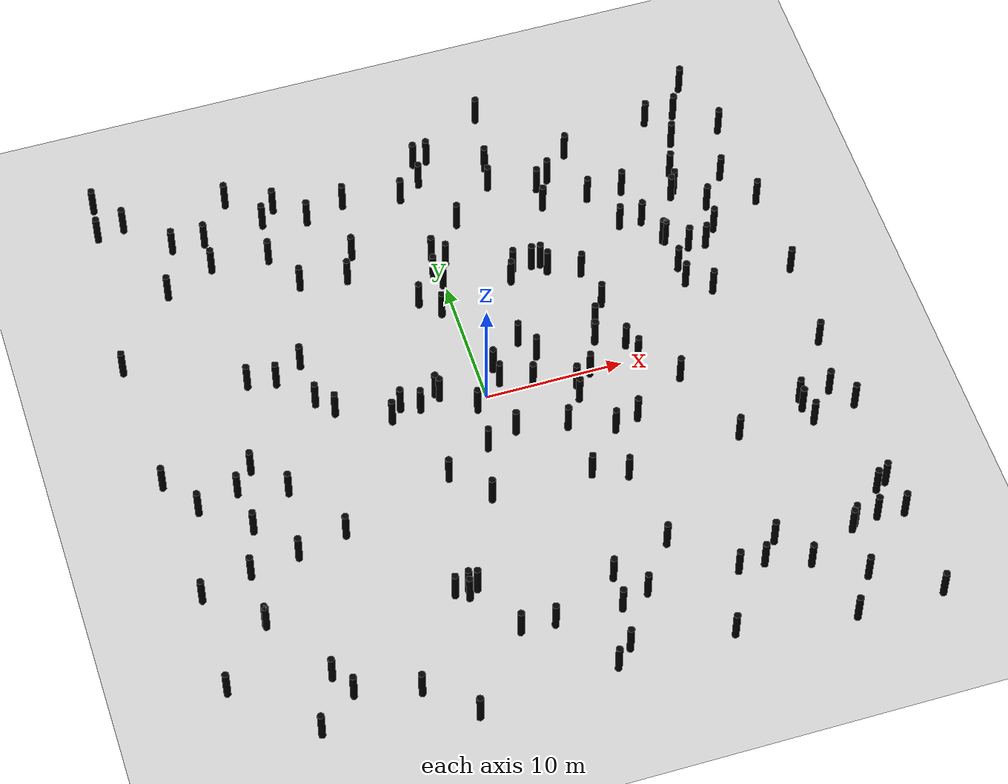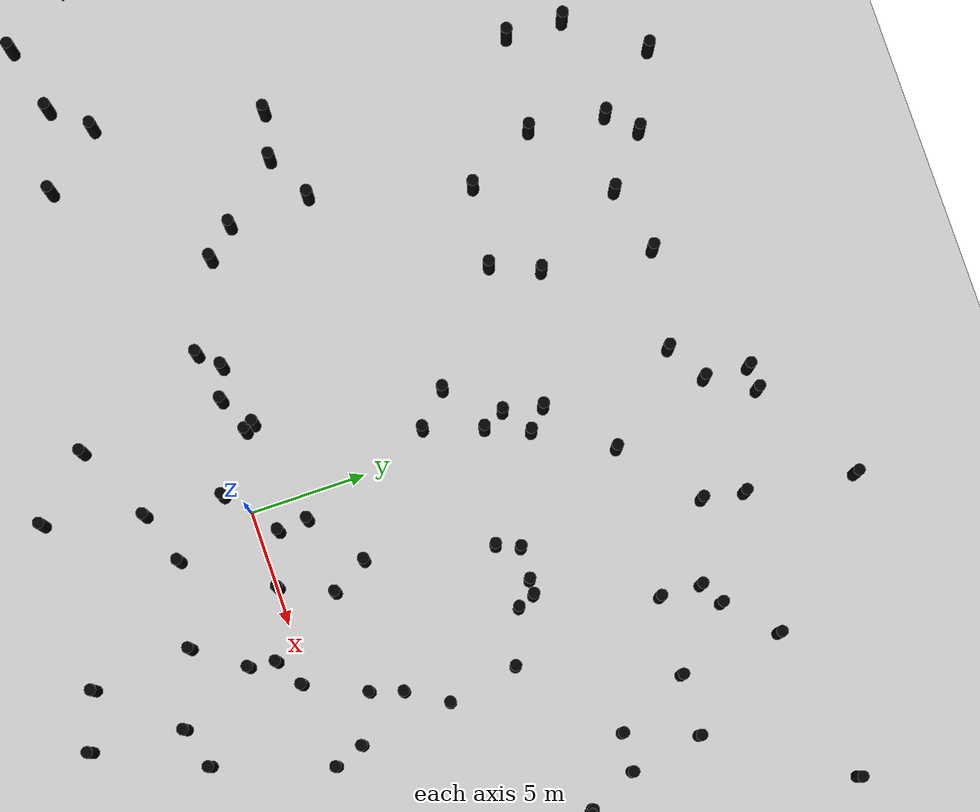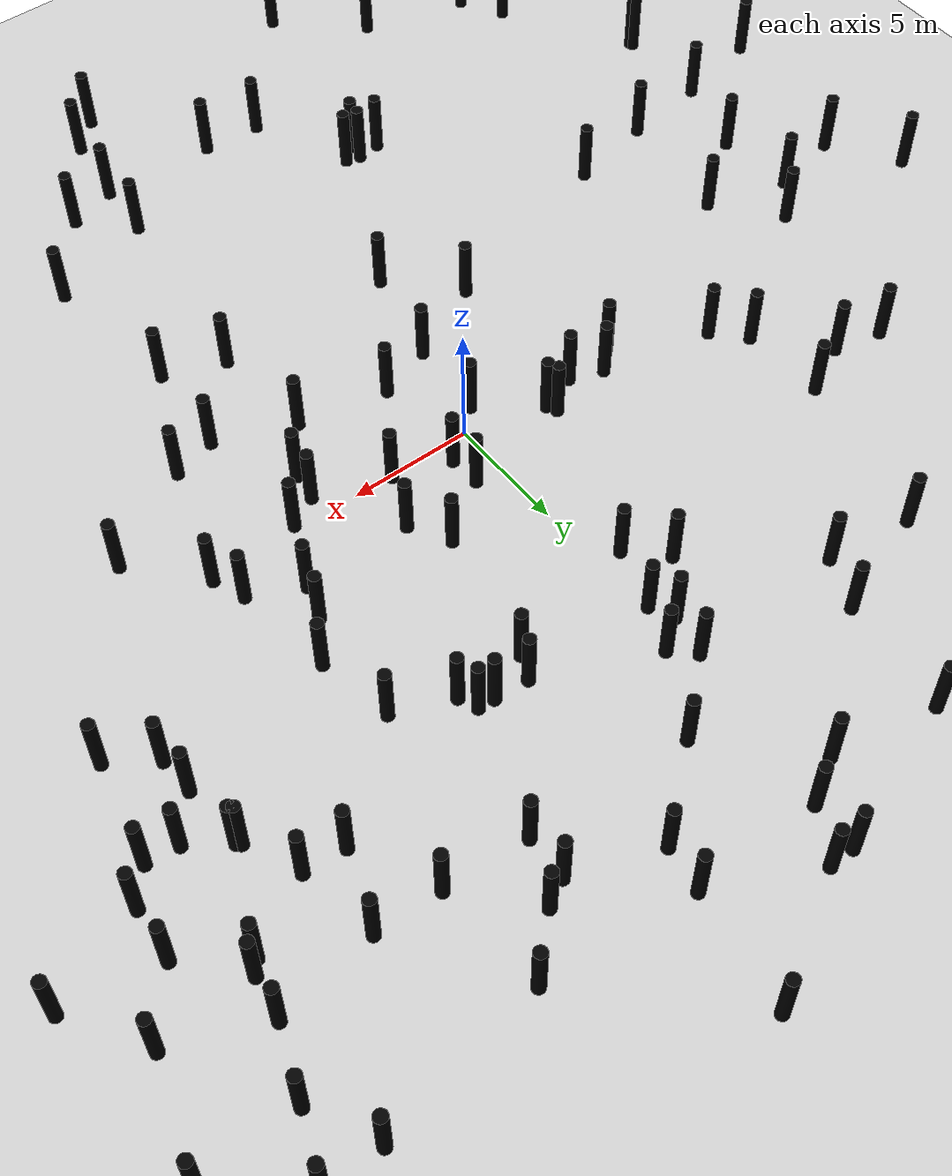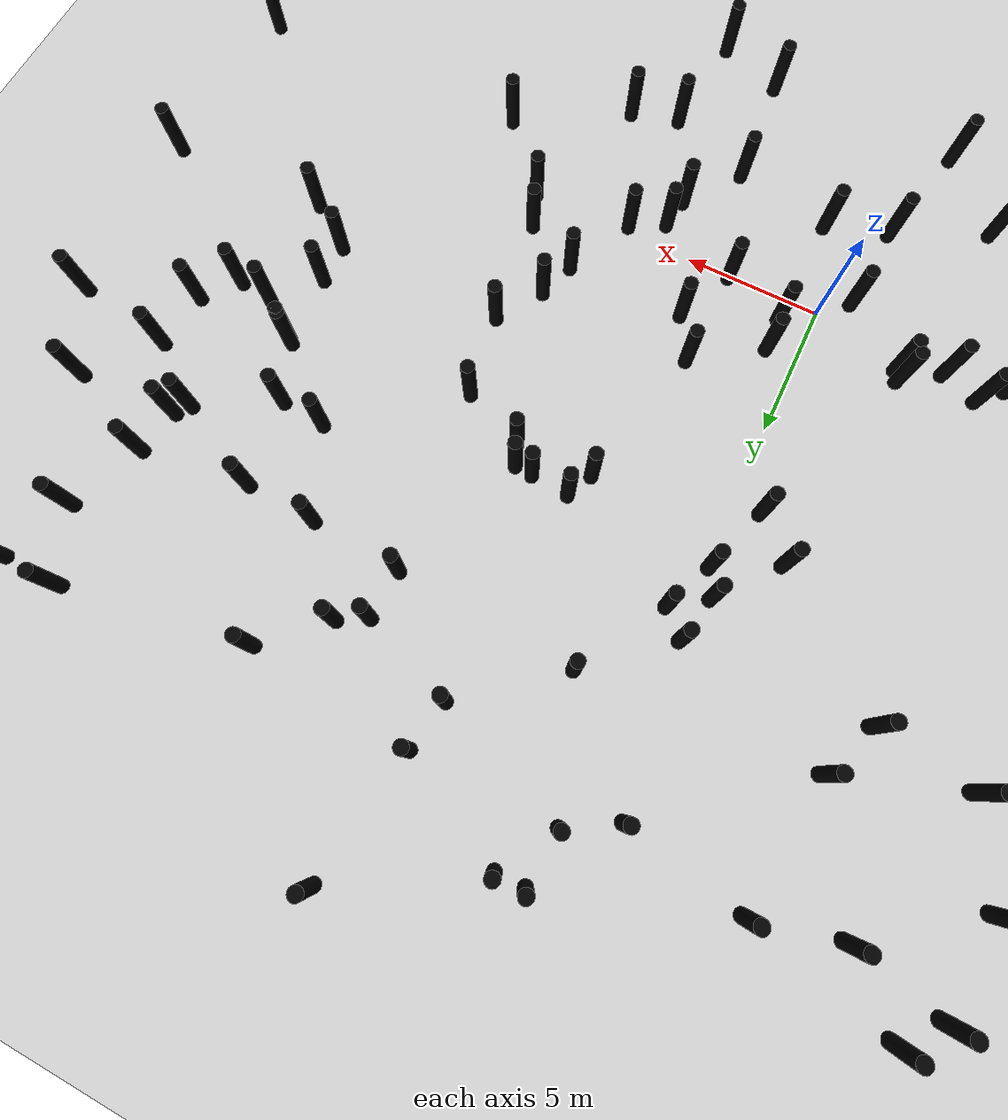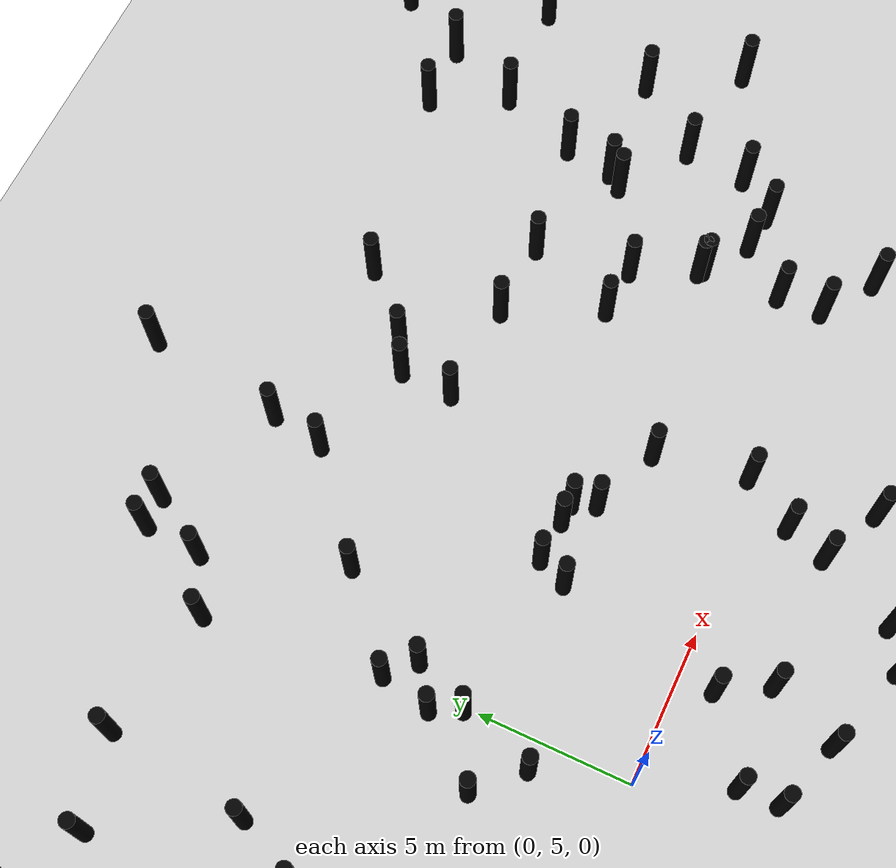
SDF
<?xml version="1.0"?>

<sdf version="1.6">
    <world name="low">
        <physics name="4ms" type="ignored">
            <max_step_size>0.004</max_step_size>
            <real_time_factor>2.0</real_time_factor>
        </physics>
        <plugin
            filename="ignition-gazebo-physics-system"
            name="ignition::gazebo::systems::Physics">
        </plugin>
        <plugin
            filename="ignition-gazebo-scene-broadcaster-system"
            name="ignition::gazebo::systems::SceneBroadcaster">
        </plugin>
        <plugin
            filename="ignition-gazebo-user-commands-system"
            name="ignition::gazebo::systems::UserCommands">
        </plugin>
        <plugin
            filename="ignition-gazebo-sensors-system"
            name="ignition::gazebo::systems::Sensors">
            <render_engine>ogre2</render_engine>
        </plugin>

        <include>
            <uri>model://ground_plane</uri>
        </include>
        <include>
            <uri>model://pole</uri>
            <name>pole1</name>
            <pose>-19.44 15.28 0 0 0 0</pose>
        </include>
        <include>
            <uri>model://pole</uri>
            <name>pole2</name>
            <pose>20.89 20.53 0 0 0 0</pose>
        </include>
        <include>
            <uri>model://pole</uri>
            <name>pole3</name>
            <pose>20.29 9.5 0 0 0 0</pose>
        </include>
        <include>
            <uri>model://pole</uri>
            <name>pole4</name>
            <pose>15.94 -8.54 0 0 0 0</pose>
        </include>
        <include>
            <uri>model://pole</uri>
            <name>pole5</name>
            <pose>20.48 11.62 0 0 0 0</pose>
        </include>
        <include>
            <uri>model://pole</uri>
            <name>pole6</name>
            <pose>-13.36 22.28 0 0 0 0</pose>
        </include>
        <include>
            <uri>model://pole</uri>
            <name>pole7</name>
            <pose>-6.07 -15.72 0 0 0 0</pose>
        </include>
        <include>
            <uri>model://pole</uri>
            <name>pole8</name>
            <pose>-22.75 24.59 0 0 0 0</pose>
        </include>
        <include>
            <uri>model://pole</uri>
            <name>pole9</name>
            <pose>24.65 -8.37 0 0 0 0</pose>
        </include>
        <include>
            <uri>model://pole</uri>
            <name>pole10</name>
            <pose>-23.79 -18.1 0 0 0 0</pose>
        </include>
        <include>
            <uri>model://pole</uri>
            <name>pole11</name>
            <pose>21.07 -6.77 0 0 0 0</pose>
        </include>
        <include>
            <uri>model://pole</uri>
            <name>pole12</name>
            <pose>20.53 -22.12 0 0 0 0</pose>
        </include>
        <include>
            <uri>model://pole</uri>
            <name>pole13</name>
            <pose>-21.06 22.23 0 0 0 0</pose>
        </include>
        <include>
            <uri>model://pole</uri>
            <name>pole14</name>
            <pose>19.26 8.27 0 0 0 0</pose>
        </include>
        <include>
            <uri>model://pole</uri>
            <name>pole15</name>
            <pose>23.69 18.23 0 0 0 0</pose>
        </include>
        <include>
            <uri>model://pole</uri>
            <name>pole16</name>
            <pose>-13.99 5.48 0 0 0 0</pose>
        </include>
        <include>
            <uri>model://pole</uri>
            <name>pole17</name>
            <pose>12.31 14.91 0 0 0 0</pose>
        </include>
        <include>
            <uri>model://pole</uri>
            <name>pole18</name>
            <pose>11.96 19.35 0 0 0 0</pose>
        </include>
        <include>
            <uri>model://pole</uri>
            <name>pole19</name>
            <pose>-15.72 19.19 0 0 0 0</pose>
        </include>
        <include>
            <uri>model://pole</uri>
            <name>pole20</name>
            <pose>8.94 15.12 0 0 0 0</pose>
        </include>
        <include>
            <uri>model://pole</uri>
            <name>pole21</name>
            <pose>7.46 -9.46 0 0 0 0</pose>
        </include>
        <include>
            <uri>model://pole</uri>
            <name>pole22</name>
            <pose>-0.59 11.38 0 0 0 0</pose>
        </include>
        <include>
            <uri>model://pole</uri>
            <name>pole23</name>
            <pose>22.82 -17.74 0 0 0 0</pose>
        </include>
        <include>
            <uri>model://pole</uri>
            <name>pole24</name>
            <pose>-7.01 -0.05 0 0 0 0</pose>
        </include>
        <include>
            <uri>model://pole</uri>
            <name>pole25</name>
            <pose>-12.74 -8.33 0 0 0 0</pose>
        </include>
        <include>
            <uri>model://pole</uri>
            <name>pole26</name>
            <pose>9.25 3.72 0 0 0 0</pose>
        </include>
        <include>
            <uri>model://pole</uri>
            <name>pole27</name>
            <pose>9.61 -4.92 0 0 0 0</pose>
        </include>
        <include>
            <uri>model://pole</uri>
            <name>pole28</name>
            <pose>21.12 -17.88 0 0 0 0</pose>
        </include>
        <include>
            <uri>model://pole</uri>
            <name>pole29</name>
            <pose>10.3 5.4 0 0 0 0</pose>
        </include>
        <include>
            <uri>model://pole</uri>
            <name>pole30</name>
            <pose>6.36 -0.93 0 0 0 0</pose>
        </include>
        <include>
            <uri>model://pole</uri>
            <name>pole31</name>
            <pose>-6.65 12.83 0 0 0 0</pose>
        </include>
        <include>
            <uri>model://pole</uri>
            <name>pole32</name>
            <pose>3.12 -22.77 0 0 0 0</pose>
        </include>
        <include>
            <uri>model://pole</uri>
            <name>pole33</name>
            <pose>-0.96 -0.88 0 0 0 0</pose>
        </include>
        <include>
            <uri>model://pole</uri>
            <name>pole34</name>
            <pose>3.62 -19.62 0 0 0 0</pose>
        </include>
        <include>
            <uri>model://pole</uri>
            <name>pole35</name>
            <pose>4.4 2.31 0 0 0 0</pose>
        </include>
        <include>
            <uri>model://pole</uri>
            <name>pole36</name>
            <pose>-8.13 -24.86 0 0 0 0</pose>
        </include>
        <include>
            <uri>model://pole</uri>
            <name>pole37</name>
            <pose>22.35 13.93 0 0 0 0</pose>
        </include>
        <include>
            <uri>model://pole</uri>
            <name>pole38</name>
            <pose>9.01 16.9 0 0 0 0</pose>
        </include>
        <include>
            <uri>model://pole</uri>
            <name>pole39</name>
            <pose>1.06 -3.48 0 0 0 0</pose>
        </include>
        <include>
            <uri>model://pole</uri>
            <name>pole40</name>
            <pose>0.61 12.25 0 0 0 0</pose>
        </include>
        <include>
            <uri>model://pole</uri>
            <name>pole41</name>
            <pose>19.9 18.04 0 0 0 0</pose>
        </include>
        <include>
            <uri>model://pole</uri>
            <name>pole42</name>
            <pose>18.26 13.23 0 0 0 0</pose>
        </include>
        <include>
            <uri>model://pole</uri>
            <name>pole43</name>
            <pose>5.63 -18.98 0 0 0 0</pose>
        </include>
        <include>
            <uri>model://pole</uri>
            <name>pole44</name>
            <pose>7.47 9.37 0 0 0 0</pose>
        </include>
        <include>
            <uri>model://pole</uri>
            <name>pole45</name>
            <pose>3.79 -17.09 0 0 0 0</pose>
        </include>
        <include>
            <uri>model://pole</uri>
            <name>pole46</name>
            <pose>-10.69 1.77 0 0 0 0</pose>
        </include>
        <include>
            <uri>model://pole</uri>
            <name>pole47</name>
            <pose>-19.87 -9.62 0 0 0 0</pose>
        </include>
        <include>
            <uri>model://pole</uri>
            <name>pole48</name>
            <pose>-10.1 13.28 0 0 0 0</pose>
        </include>
        <include>
            <uri>model://pole</uri>
            <name>pole49</name>
            <pose>15.32 -17.54 0 0 0 0</pose>
        </include>
        <include>
            <uri>model://pole</uri>
            <name>pole50</name>
            <pose>-18.11 19.28 0 0 0 0</pose>
        </include>
        <include>
            <uri>model://pole</uri>
            <name>pole51</name>
            <pose>-2.29 9.28 0 0 0 0</pose>
        </include>
        <include>
            <uri>model://pole</uri>
            <name>pole52</name>
            <pose>21.0 -7.6 0 0 0 0</pose>
        </include>
        <include>
            <uri>model://pole</uri>
            <name>pole53</name>
            <pose>16.39 9.57 0 0 0 0</pose>
        </include>
        <include>
            <uri>model://pole</uri>
            <name>pole54</name>
            <pose>10.29 -23.83 0 0 0 0</pose>
        </include>
        <include>
            <uri>model://pole</uri>
            <name>pole55</name>
            <pose>0.8 19.89 0 0 0 0</pose>
        </include>
        <include>
            <uri>model://pole</uri>
            <name>pole56</name>
            <pose>24.43 4.34 0 0 0 0</pose>
        </include>
        <include>
            <uri>model://pole</uri>
            <name>pole57</name>
            <pose>1.19 0.86 0 0 0 0</pose>
        </include>
        <include>
            <uri>model://pole</uri>
            <name>pole58</name>
            <pose>-2.22 -8.45 0 0 0 0</pose>
        </include>
        <include>
            <uri>model://pole</uri>
            <name>pole59</name>
            <pose>18.67 20.52 0 0 0 0</pose>
        </include>
        <include>
            <uri>model://pole</uri>
            <name>pole60</name>
            <pose>-19.02 -2.79 0 0 0 0</pose>
        </include>
        <include>
            <uri>model://pole</uri>
            <name>pole61</name>
            <pose>-18.57 -23.03 0 0 0 0</pose>
        </include>
        <include>
            <uri>model://pole</uri>
            <name>pole62</name>
            <pose>-23.55 -10.51 0 0 0 0</pose>
        </include>
        <include>
            <uri>model://pole</uri>
            <name>pole63</name>
            <pose>-1.13 -19.49 0 0 0 0</pose>
        </include>
        <include>
            <uri>model://pole</uri>
            <name>pole64</name>
            <pose>6.2 -2.1 0 0 0 0</pose>
        </include>
        <include>
            <uri>model://pole</uri>
            <name>pole65</name>
            <pose>24.76 -18.0 0 0 0 0</pose>
        </include>
        <include>
            <uri>model://pole</uri>
            <name>pole66</name>
            <pose>13.8 11.78 0 0 0 0</pose>
        </include>
        <include>
            <uri>model://pole</uri>
            <name>pole67</name>
            <pose>13.6 -2.53 0 0 0 0</pose>
        </include>
        <include>
            <uri>model://pole</uri>
            <name>pole68</name>
            <pose>9.75 8.45 0 0 0 0</pose>
        </include>
        <include>
            <uri>model://pole</uri>
            <name>pole69</name>
            <pose>10.0 17.46 0 0 0 0</pose>
        </include>
        <include>
            <uri>model://pole</uri>
            <name>pole70</name>
            <pose>6.51 10.17 0 0 0 0</pose>
        </include>
        <include>
            <uri>model://pole</uri>
            <name>pole71</name>
            <pose>10.81 1.35 0 0 0 0</pose>
        </include>
        <include>
            <uri>model://pole</uri>
            <name>pole72</name>
            <pose>-0.96 7.95 0 0 0 0</pose>
        </include>
        <include>
            <uri>model://pole</uri>
            <name>pole73</name>
            <pose>-15.73 -20.79 0 0 0 0</pose>
        </include>
        <include>
            <uri>model://pole</uri>
            <name>pole74</name>
            <pose>7.16 10.12 0 0 0 0</pose>
        </include>
        <include>
            <uri>model://pole</uri>
            <name>pole75</name>
            <pose>24.16 11.03 0 0 0 0</pose>
        </include>
        <include>
            <uri>model://pole</uri>
            <name>pole76</name>
            <pose>-1.22 -4.25 0 0 0 0</pose>
        </include>
        <include>
            <uri>model://pole</uri>
            <name>pole77</name>
            <pose>7.82 -5.43 0 0 0 0</pose>
        </include>
        <include>
            <uri>model://pole</uri>
            <name>pole78</name>
            <pose>-11.65 16.3 0 0 0 0</pose>
        </include>
        <include>
            <uri>model://pole</uri>
            <name>pole79</name>
            <pose>3.51 3.87 0 0 0 0</pose>
        </include>
        <include>
            <uri>model://pole</uri>
            <name>pole80</name>
            <pose>24.97 -24.88 0 0 0 0</pose>
        </include>
        <include>
            <uri>model://pole</uri>
            <name>pole81</name>
            <pose>1.12 2.17 0 0 0 0</pose>
        </include>
        <include>
            <uri>model://pole</uri>
            <name>pole82</name>
            <pose>-15.82 16.72 0 0 0 0</pose>
        </include>
        <include>
            <uri>model://pole</uri>
            <name>pole83</name>
            <pose>-6.95 -15.2 0 0 0 0</pose>
        </include>
        <include>
            <uri>model://pole</uri>
            <name>pole84</name>
            <pose>15.45 11.65 0 0 0 0</pose>
        </include>
        <include>
            <uri>model://pole</uri>
            <name>pole85</name>
            <pose>18.89 15.38 0 0 0 0</pose>
        </include>
        <include>
            <uri>model://pole</uri>
            <name>pole86</name>
            <pose>8.8 2.34 0 0 0 0</pose>
        </include>
        <include>
            <uri>model://pole</uri>
            <name>pole87</name>
            <pose>-17.66 -1.24 0 0 0 0</pose>
        </include>
        <include>
            <uri>model://pole</uri>
            <name>pole88</name>
            <pose>-11.22 19.6 0 0 0 0</pose>
        </include>
        <include>
            <uri>model://pole</uri>
            <name>pole89</name>
            <pose>16.71 5.36 0 0 0 0</pose>
        </include>
        <include>
            <uri>model://pole</uri>
            <name>pole90</name>
            <pose>8.18 -15.54 0 0 0 0</pose>
        </include>
        <include>
            <uri>model://pole</uri>
            <name>pole91</name>
            <pose>-18.75 -6.11 0 0 0 0</pose>
        </include>
        <include>
            <uri>model://pole</uri>
            <name>pole92</name>
            <pose>-23.86 -0.69 0 0 0 0</pose>
        </include>
        <include>
            <uri>model://pole</uri>
            <name>pole93</name>
            <pose>-16.33 -9.11 0 0 0 0</pose>
        </include>
        <include>
            <uri>model://pole</uri>
            <name>pole94</name>
            <pose>3.44 0.09 0 0 0 0</pose>
        </include>
        <include>
            <uri>model://pole</uri>
            <name>pole95</name>
            <pose>6.65 24.6 0 0 0 0</pose>
        </include>
        <include>
            <uri>model://pole</uri>
            <name>pole96</name>
            <pose>-6.17 0.79 0 0 0 0</pose>
        </include>
        <include>
            <uri>model://pole</uri>
            <name>pole97</name>
            <pose>-5.11 19.63 0 0 0 0</pose>
        </include>
        <include>
            <uri>model://pole</uri>
            <name>pole98</name>
            <pose>-0.23 13.07 0 0 0 0</pose>
        </include>
        <include>
            <uri>model://pole</uri>
            <name>pole99</name>
            <pose>4.69 -4.19 0 0 0 0</pose>
        </include>
        <include>
            <uri>model://pole</uri>
            <name>pole100</name>
            <pose>0.95 21.82 0 0 0 0</pose>
        </include>
        <include>
            <uri>model://pole</uri>
            <name>pole101</name>
            <pose>1.89 -23.98 0 0 0 0</pose>
        </include>
        <include>
            <uri>model://pole</uri>
            <name>pole102</name>
            <pose>5.11 10.26 0 0 0 0</pose>
        </include>
        <include>
            <uri>model://pole</uri>
            <name>pole103</name>
            <pose>22.2 22.94 0 0 0 0</pose>
        </include>
        <include>
            <uri>model://pole</uri>
            <name>pole104</name>
            <pose>-19.94 -13.67 0 0 0 0</pose>
        </include>
        <include>
            <uri>model://pole</uri>
            <name>pole105</name>
            <pose>18.69 -24.99 0 0 0 0</pose>
        </include>
        <include>
            <uri>model://pole</uri>
            <name>pole106</name>
            <pose>23.34 -6.7 0 0 0 0</pose>
        </include>
        <include>
            <uri>model://pole</uri>
            <name>pole107</name>
            <pose>-16.74 -19.03 0 0 0 0</pose>
        </include>
        <include>
            <uri>model://pole</uri>
            <name>pole108</name>
            <pose>14.09 -19.06 0 0 0 0</pose>
        </include>
        <include>
            <uri>model://pole</uri>
            <name>pole109</name>
            <pose>16.53 9.44 0 0 0 0</pose>
        </include>
        <include>
            <uri>model://pole</uri>
            <name>pole110</name>
            <pose>16.65 6.85 0 0 0 0</pose>
        </include>
        <include>
            <uri>model://pole</uri>
            <name>pole111</name>
            <pose>-15.6 -3.76 0 0 0 0</pose>
        </include>
        <include>
            <uri>model://pole</uri>
            <name>pole112</name>
            <pose>-10.12 20.75 0 0 0 0</pose>
        </include>
        <include>
            <uri>model://pole</uri>
            <name>pole113</name>
            <pose>4.68 9.29 0 0 0 0</pose>
        </include>
        <include>
            <uri>model://pole</uri>
            <name>pole114</name>
            <pose>-3.55 -19.34 0 0 0 0</pose>
        </include>
        <include>
            <uri>model://pole</uri>
            <name>pole115</name>
            <pose>7.6 -0.23 0 0 0 0</pose>
        </include>
        <include>
            <uri>model://pole</uri>
            <name>pole116</name>
            <pose>-0.88 18.87 0 0 0 0</pose>
        </include>
        <include>
            <uri>model://pole</uri>
            <name>pole117</name>
            <pose>5.05 -8.54 0 0 0 0</pose>
        </include>
        <include>
            <uri>model://pole</uri>
            <name>pole118</name>
            <pose>-23.05 21.93 0 0 0 0</pose>
        </include>
        <include>
            <uri>model://pole</uri>
            <name>pole119</name>
            <pose>1.98 21.85 0 0 0 0</pose>
        </include>
        <include>
            <uri>model://pole</uri>
            <name>pole120</name>
            <pose>2.42 15.43 0 0 0 0</pose>
        </include>
        <include>
            <uri>model://pole</uri>
            <name>pole121</name>
            <pose>-11.29 -21.94 0 0 0 0</pose>
        </include>
        <include>
            <uri>model://pole</uri>
            <name>pole122</name>
            <pose>-5.36 -15.2 0 0 0 0</pose>
        </include>
        <include>
            <uri>model://pole</uri>
            <name>pole123</name>
            <pose>-19.92 -13.82 0 0 0 0</pose>
        </include>
        <include>
            <uri>model://pole</uri>
            <name>pole124</name>
            <pose>23.57 -15.63 0 0 0 0</pose>
        </include>
        <include>
            <uri>model://pole</uri>
            <name>pole125</name>
            <pose>14.93 14.8 0 0 0 0</pose>
        </include>
        <include>
            <uri>model://pole</uri>
            <name>pole126</name>
            <pose>-22.0 -3.48 0 0 0 0</pose>
        </include>
        <include>
            <uri>model://pole</uri>
            <name>pole127</name>
            <pose>17.16 -20.05 0 0 0 0</pose>
        </include>
        <include>
            <uri>model://pole</uri>
            <name>pole128</name>
            <pose>21.41 -8.88 0 0 0 0</pose>
        </include>
        <include>
            <uri>model://pole</uri>
            <name>pole129</name>
            <pose>17.99 8.41 0 0 0 0</pose>
        </include>
        <include>
            <uri>model://pole</uri>
            <name>pole130</name>
            <pose>-0.14 10.43 0 0 0 0</pose>
        </include>
        <include>
            <uri>model://pole</uri>
            <name>pole131</name>
            <pose>5.92 19.92 0 0 0 0</pose>
        </include>
        <include>
            <uri>model://pole</uri>
            <name>pole132</name>
            <pose>12.19 -19.1 0 0 0 0</pose>
        </include>
        <include>
            <uri>model://pole</uri>
            <name>pole133</name>
            <pose>-8.02 18.92 0 0 0 0</pose>
        </include>
        <include>
            <uri>model://pole</uri>
            <name>pole134</name>
            <pose>-4.82 0.31 0 0 0 0</pose>
        </include>
        <include>
            <uri>model://pole</uri>
            <name>pole135</name>
            <pose>-5.75 14.87 0 0 0 0</pose>
        </include>
        <include>
            <uri>model://pole</uri>
            <name>pole136</name>
            <pose>11.3 0.06 0 0 0 0</pose>
        </include>
        <include>
            <uri>model://pole</uri>
            <name>pole137</name>
            <pose>18.4 4.16 0 0 0 0</pose>
        </include>
        <include>
            <uri>model://pole</uri>
            <name>pole138</name>
            <pose>5.61 18.12 0 0 0 0</pose>
        </include>
        <include>
            <uri>model://pole</uri>
            <name>pole139</name>
            <pose>18.63 13.71 0 0 0 0</pose>
        </include>
        <include>
            <uri>model://pole</uri>
            <name>pole140</name>
            <pose>24.38 -15.22 0 0 0 0</pose>
        </include>
        <include>
            <uri>model://pole</uri>
            <name>pole141</name>
            <pose>-3.26 0.88 0 0 0 0</pose>
        </include>
        <include>
            <uri>model://pole</uri>
            <name>pole142</name>
            <pose>24.14 -2.43 0 0 0 0</pose>
        </include>
        <include>
            <uri>model://pole</uri>
            <name>pole143</name>
            <pose>-3.46 1.28 0 0 0 0</pose>
        </include>
        <include>
            <uri>model://pole</uri>
            <name>pole144</name>
            <pose>-5.96 -15.05 0 0 0 0</pose>
        </include>
        <include>
            <uri>model://pole</uri>
            <name>pole145</name>
            <pose>-11.8 2.99 0 0 0 0</pose>
        </include>
        <include>
            <uri>model://pole</uri>
            <name>pole146</name>
            <pose>-24.16 9.66 0 0 0 0</pose>
        </include>
        <include>
            <uri>model://pole</uri>
            <name>pole147</name>
            <pose>20.82 -18.23 0 0 0 0</pose>
        </include>
        <include>
            <uri>model://pole</uri>
            <name>pole148</name>
            <pose>-4.6 -5.92 0 0 0 0</pose>
        </include>
        <include>
            <uri>model://pole</uri>
            <name>pole149</name>
            <pose>-11.95 6.51 0 0 0 0</pose>
        </include>
        <include>
            <uri>model://pole</uri>
            <name>pole150</name>
            <pose>-16.0 5.9 0 0 0 0</pose>
        </include>

    </world>
</sdf>

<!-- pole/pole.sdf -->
<sdf version="1.9">
    <model name="pole">
        <link name="pole">

            <visual name='visual'>
                <geometry>
                    <cylinder>
                        <radius>0.25</radius>
                        <length>5.0</length>
                    </cylinder>
                </geometry>
                <material>
                    <diffuse>0 0 0 1</diffuse>
                </material>
            </visual>

            <inertial>
                <mass>0.005</mass>
                <inertia>
                    <ixx>8.33e-06</ixx>
                    <ixy>0</ixy>
                    <ixz>0</ixz>
                    <iyy>8.33e-06</iyy>
                    <iyz>0</iyz>
                    <izz>8.33e-06</izz>
                </inertia>
            </inertial>

            <collision name="collision">
                <geometry>
                    <cylinder>
                        <radius>0.25</radius>
                        <length>5.0</length>
                    </cylinder>
                </geometry>
            </collision>
        </link>
        <frame name="mount_point"/>
    </model>
</sdf>
